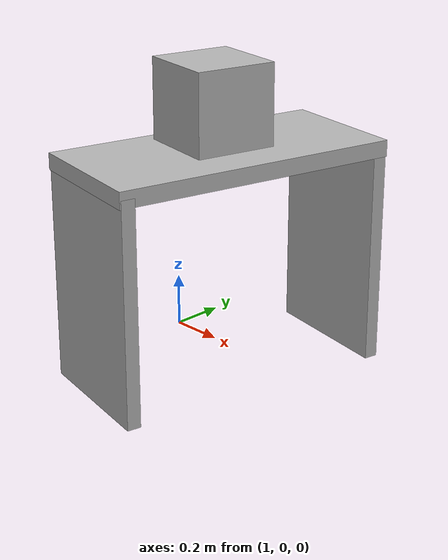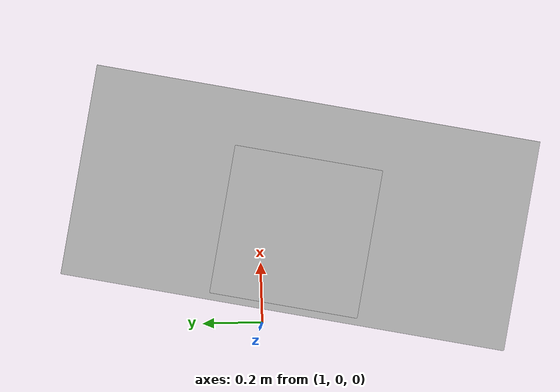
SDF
<sdf version='1.4'>
  <world name='tabledemo'>

    <model name='Table01'>
      <pose>0.2 0.1 0 0 0 -0.2</pose>

      <link name='Table Lid'>
        <pose>1.20 0.0 0.8 0 0 0</pose>
        <collision name='collision'>
          <geometry>
            <box>
              <size>0.5 1.06 0.06</size>
            </box>
          </geometry>
        </collision>
        <visual name='visual'>
          <geometry>
            <box>
              <size>0.5 1.06 0.06</size>
            </box>
          </geometry>
        </visual>
      </link>

      <link name='Leg1'>
        <pose>1.20 0.5 0.4 0 0 0</pose>
        <collision name='collision'>
          <geometry>
            <box>
              <size>0.5 0.05 0.8</size>
            </box>
          </geometry>
        </collision>
        <visual name='visual'>
          <geometry>
            <box>
              <size>0.5 0.05 0.8</size>
            </box>
          </geometry>
        </visual>
      </link>

      <link name='Leg2'>
        <pose>1.20 -0.5 0.4 0 0 0</pose>
        <collision name='collision'>
          <geometry>
            <box>
              <size>0.5 0.05 0.8</size>
            </box>
          </geometry>
        </collision>
        <visual name='visual'>
          <geometry>
            <box>
              <size>0.5 0.05 0.8</size>
            </box>
          </geometry>
        </visual>
      </link>
      <static>1</static>
    </model>

    <model name='Box'>
      <pose>0.2 0.1 0.175 0 0 -0.2</pose>

      <link name='Box'>
        <pose>1.15 0.0 0.8 0 0 0</pose>
        <collision name='collision'>
          <geometry>
            <box>
              <size>0.3 0.3 0.3</size>
            </box>
          </geometry>
        </collision>
        <visual name='visual'>
          <geometry>
            <box>
              <size>0.3 0.3 0.3</size>
            </box>
          </geometry>
        </visual>
      </link>
      <static>1</static>
    </model>

  </world>
</sdf>
